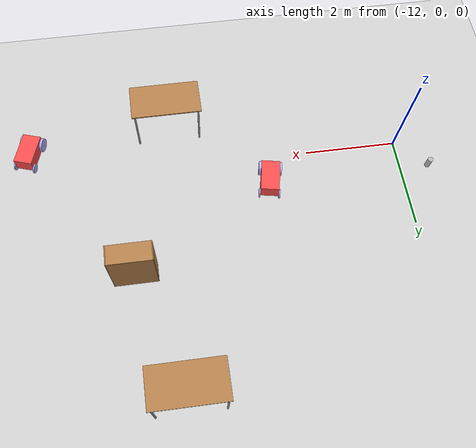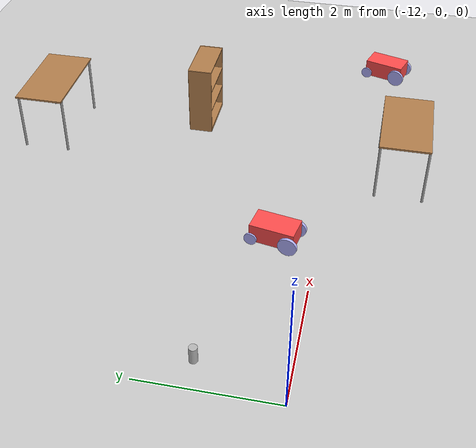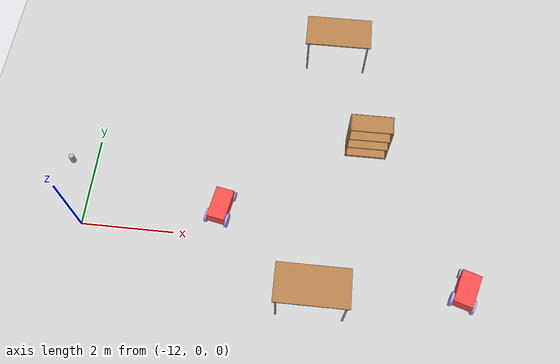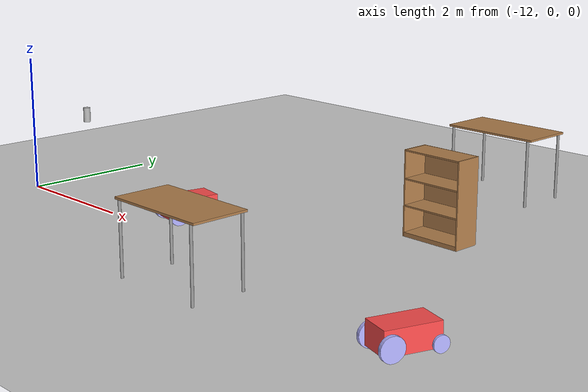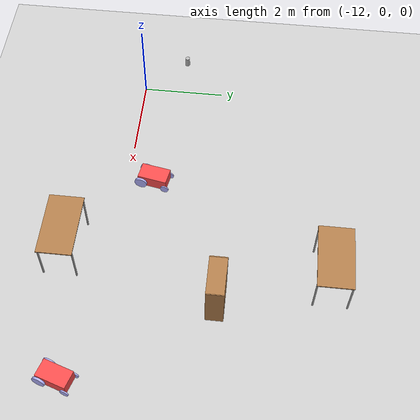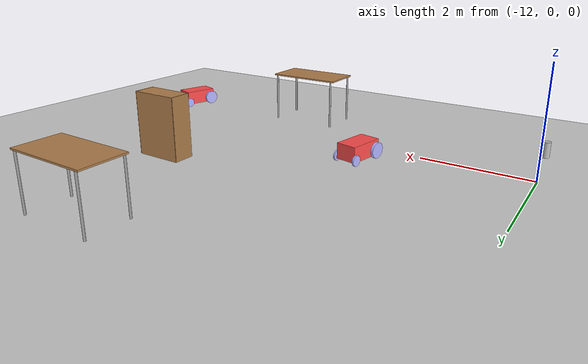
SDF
<sdf version="1.6">
 <world name="default">
  <model name="ground_plane">
   <static>1</static>
   <link name="link">
    <collision name="collision">
     <geometry><plane><normal>0 0 1</normal><size>100 100</size></plane></geometry>
     <surface>
      <contact><collide_bitmask>65535</collide_bitmask></contact>
      <friction><ode><mu>100</mu><mu2>50</mu2></ode></friction>
     </surface>
    </collision>
    <visual name="visual">
     <cast_shadows>0</cast_shadows>
     <geometry><plane><normal>0 0 1</normal><size>100 100</size></plane></geometry>
     <material>
      <script><uri>file://media/materials/scripts/gazebo.material</uri><name>Gazebo/Grey</name></script>
     </material>
    </visual>
   </link>
  </model>
  <model name="bookshelf">
   <static>1</static>
   <link name="link">
    <inertial><mass>1</mass></inertial>
    <collision name="back">
     <pose>0 0.005 0.6 0 -0 0</pose>
     <geometry><box><size>0.9 0.01 1.2</size></box></geometry>
    </collision>
    <visual name="visual1">
     <pose>0 0.005 0.6 0 -0 0</pose>
     <geometry><box><size>0.9 0.01 1.2</size></box></geometry>
     <material>
      <script><uri>file://media/materials/scripts/gazebo.material</uri><name>Gazebo/Wood</name></script>
     </material>
    </visual>
    <collision name="left_side">
     <pose>0.45 -0.195 0.6 0 -0 0</pose>
     <geometry><box><size>0.02 0.4 1.2</size></box></geometry>
    </collision>
    <visual name="visual2">
     <pose>0.45 -0.195 0.6 0 -0 0</pose>
     <geometry><box><size>0.02 0.4 1.2</size></box></geometry>
     <material>
      <script><uri>file://media/materials/scripts/gazebo.material</uri><name>Gazebo/Wood</name></script>
     </material>
    </visual>
    <collision name="right_side">
     <pose>-0.45 -0.195 0.6 0 -0 0</pose>
     <geometry><box><size>0.02 0.4 1.2</size></box></geometry>
    </collision>
    <visual name="visual3">
     <pose>-0.45 -0.195 0.6 0 -0 0</pose>
     <geometry><box><size>0.02 0.4 1.2</size></box></geometry>
     <material>
      <script><uri>file://media/materials/scripts/gazebo.material</uri><name>Gazebo/Wood</name></script>
     </material>
    </visual>
    <collision name="bottom">
     <pose>0 -0.195 0.03 0 -0 0</pose>
     <geometry><box><size>0.88 0.4 0.06</size></box></geometry>
    </collision>
    <visual name="visual4">
     <pose>0 -0.195 0.03 0 -0 0</pose>
     <geometry><box><size>0.88 0.4 0.06</size></box></geometry>
     <material>
      <script><uri>file://media/materials/scripts/gazebo.material</uri><name>Gazebo/Wood</name></script>
     </material>
    </visual>
    <collision name="top">
     <pose>0 -0.195 1.19 0 -0 0</pose>
     <geometry><box><size>0.88 0.4 0.02</size></box></geometry>
    </collision>
    <visual name="visual5">
     <pose>0 -0.195 1.19 0 -0 0</pose>
     <geometry><box><size>0.88 0.4 0.02</size></box></geometry>
     <material>
      <script><uri>file://media/materials/scripts/gazebo.material</uri><name>Gazebo/Wood</name></script>
     </material>
    </visual>
    <collision name="low_shelf">
     <pose>0 -0.195 0.43 0 -0 0</pose>
     <geometry><box><size>0.88 0.4 0.02</size></box></geometry>
    </collision>
    <visual name="visual6">
     <pose>0 -0.195 0.43 0 -0 0</pose>
     <geometry><box><size>0.88 0.4 0.02</size></box></geometry>
     <material>
      <script><uri>file://media/materials/scripts/gazebo.material</uri><name>Gazebo/Wood</name></script>
     </material>
    </visual>
    <collision name="high_shelf">
     <pose>0 -0.195 0.8 0 -0 0</pose>
     <geometry><box><size>0.88 0.4 0.02</size></box></geometry>
    </collision>
    <visual name="visual7">
     <pose>0 -0.195 0.8 0 -0 0</pose>
     <geometry><box><size>0.88 0.4 0.02</size></box></geometry>
     <material>
      <script><uri>file://media/materials/scripts/gazebo.material</uri><name>Gazebo/Wood</name></script>
     </material>
    </visual>
   </link>
   <pose>-5.96108 2.61309 0 0 -0 0</pose>
  </model>
  <model name="beer">
   <link name="link">
    <pose>0 0 0.115 0 -0 0</pose>
    <inertial>
     <mass>0.39</mass>
     <inertia><ixx>0.00058</ixx><ixy>0</ixy><ixz>0</ixz><iyy>0.00058</iyy><iyz>0</iyz><izz>0.00019</izz></inertia>
    </inertial>
    <collision name="collision">
     <geometry><cylinder><radius>0.055</radius><length>0.23</length></cylinder></geometry>
    </collision>
    <visual name="visual">
     <geometry><cylinder><radius>0.055</radius><length>0.23</length></cylinder></geometry>
     <material>
      <script>
       <uri>model://beer/materials/scripts</uri>
       <uri>model://beer/materials/textures</uri>
       <name>Beer/Diffuse</name>
      </script>
     </material>
    </visual>
   </link>
   <pose>-12.2076 1.09427 0.832171 2.9e-05 1.6e-05 0.00079</pose>
  </model>
  <model name="table">
   <static>1</static>
   <link name="link">
    <collision name="surface">
     <pose>0 0 1 0 -0 0</pose>
     <geometry><box><size>1.5 0.8 0.03</size></box></geometry>
     <surface><friction><ode><mu>0.6</mu><mu2>0.6</mu2></ode></friction></surface>
    </collision>
    <visual name="visual1">
     <pose>0 0 1 0 -0 0</pose>
     <geometry><box><size>1.5 0.8 0.03</size></box></geometry>
     <material>
      <script><uri>file://media/materials/scripts/gazebo.material</uri><name>Gazebo/Wood</name></script>
     </material>
    </visual>
    <collision name="front_left_leg">
     <pose>0.68 0.38 0.5 0 -0 0</pose>
     <geometry><cylinder><radius>0.02</radius><length>1</length></cylinder></geometry>
    </collision>
    <visual name="front_left_leg">
     <pose>0.68 0.38 0.5 0 -0 0</pose>
     <geometry><cylinder><radius>0.02</radius><length>1</length></cylinder></geometry>
     <material>
      <script><uri>file://media/materials/scripts/gazebo.material</uri><name>Gazebo/Grey</name></script>
     </material>
    </visual>
    <collision name="front_right_leg">
     <pose>0.68 -0.38 0.5 0 -0 0</pose>
     <geometry><cylinder><radius>0.02</radius><length>1</length></cylinder></geometry>
    </collision>
    <visual name="front_right_leg">
     <pose>0.68 -0.38 0.5 0 -0 0</pose>
     <geometry><cylinder><radius>0.02</radius><length>1</length></cylinder></geometry>
     <material>
      <script><uri>file://media/materials/scripts/gazebo.material</uri><name>Gazebo/Grey</name></script>
     </material>
    </visual>
    <collision name="back_right_leg">
     <pose>-0.68 -0.38 0.5 0 -0 0</pose>
     <geometry><cylinder><radius>0.02</radius><length>1</length></cylinder></geometry>
    </collision>
    <visual name="back_right_leg">
     <pose>-0.68 -0.38 0.5 0 -0 0</pose>
     <geometry><cylinder><radius>0.02</radius><length>1</length></cylinder></geometry>
     <material>
      <script><uri>file://media/materials/scripts/gazebo.material</uri><name>Gazebo/Grey</name></script>
     </material>
    </visual>
    <collision name="back_left_leg">
     <pose>-0.68 0.38 0.5 0 -0 0</pose>
     <geometry><cylinder><radius>0.02</radius><length>1</length></cylinder></geometry>
    </collision>
    <visual name="back_left_leg">
     <pose>-0.68 0.38 0.5 0 -0 0</pose>
     <geometry><cylinder><radius>0.02</radius><length>1</length></cylinder></geometry>
     <material>
      <script><uri>file://media/materials/scripts/gazebo.material</uri><name>Gazebo/Grey</name></script>
     </material>
    </visual>
   </link>
   <pose>-6.96623 -1.12797 0 0 -0 0</pose>
  </model>
  <model name="table_0">
   <static>1</static>
   <link name="link">
    <collision name="surface">
     <pose>0 0 1 0 -0 0</pose>
     <geometry><box><size>1.5 0.8 0.03</size></box></geometry>
     <surface><friction><ode><mu>0.6</mu><mu2>0.6</mu2></ode></friction></surface>
    </collision>
    <visual name="visual1">
     <pose>0 0 1 0 -0 0</pose>
     <geometry><box><size>1.5 0.8 0.03</size></box></geometry>
     <material>
      <script><uri>file://media/materials/scripts/gazebo.material</uri><name>Gazebo/Wood</name></script>
     </material>
    </visual>
    <collision name="front_left_leg">
     <pose>0.68 0.38 0.5 0 -0 0</pose>
     <geometry><cylinder><radius>0.02</radius><length>1</length></cylinder></geometry>
    </collision>
    <visual name="front_left_leg">
     <pose>0.68 0.38 0.5 0 -0 0</pose>
     <geometry><cylinder><radius>0.02</radius><length>1</length></cylinder></geometry>
     <material>
      <script><uri>file://media/materials/scripts/gazebo.material</uri><name>Gazebo/Grey</name></script>
     </material>
    </visual>
    <collision name="front_right_leg">
     <pose>0.68 -0.38 0.5 0 -0 0</pose>
     <geometry><cylinder><radius>0.02</radius><length>1</length></cylinder></geometry>
    </collision>
    <visual name="front_right_leg">
     <pose>0.68 -0.38 0.5 0 -0 0</pose>
     <geometry><cylinder><radius>0.02</radius><length>1</length></cylinder></geometry>
     <material>
      <script><uri>file://media/materials/scripts/gazebo.material</uri><name>Gazebo/Grey</name></script>
     </material>
    </visual>
    <collision name="back_right_leg">
     <pose>-0.68 -0.38 0.5 0 -0 0</pose>
     <geometry><cylinder><radius>0.02</radius><length>1</length></cylinder></geometry>
    </collision>
    <visual name="back_right_leg">
     <pose>-0.68 -0.38 0.5 0 -0 0</pose>
     <geometry><cylinder><radius>0.02</radius><length>1</length></cylinder></geometry>
     <material>
      <script><uri>file://media/materials/scripts/gazebo.material</uri><name>Gazebo/Grey</name></script>
     </material>
    </visual>
    <collision name="back_left_leg">
     <pose>-0.68 0.38 0.5 0 -0 0</pose>
     <geometry><cylinder><radius>0.02</radius><length>1</length></cylinder></geometry>
    </collision>
    <visual name="back_left_leg">
     <pose>-0.68 0.38 0.5 0 -0 0</pose>
     <geometry><cylinder><radius>0.02</radius><length>1</length></cylinder></geometry>
     <material>
      <script><uri>file://media/materials/scripts/gazebo.material</uri><name>Gazebo/Grey</name></script>
     </material>
    </visual>
   </link>
   <pose>-6.78918 4.91464 0 0 -0 0</pose>
  </model>
  <model name="Robot">
   <link name="link_0">
    <pose>0 -0.02 0.06 0 -0 0</pose>
    <inertial>
     <mass>1</mass>
     <inertia>
      <ixx>0.166667</ixx>
      <ixy>0</ixy>
      <ixz>0</ixz>
      <iyy>0.166667</iyy>
      <iyz>0</iyz>
      <izz>0.166667</izz>
     </inertia>
    </inertial>
    <visual name="visual">
     <geometry><box><size>0.4 0.7 0.3</size></box></geometry>
     <material>
      <lighting>1</lighting>
      <script><uri>file://media/materials/scripts/gazebo.material</uri><name>Gazebo/Grey</name></script>
      <shader type="pixel"><normal_map>__default__</normal_map></shader>
      <ambient>1 0.3 0.3 1</ambient>
      <diffuse>0.7 0.7 0.7 1</diffuse>
      <specular>0.01 0.01 0.01 1</specular>
      <emissive>0 0 0 1</emissive>
     </material>
    </visual>
    <collision name="collision">
     <geometry><box><size>0.4 0.7 0.3</size></box></geometry>
     <surface>
      <friction>
       <ode><mu>1</mu><mu2>1</mu2><fdir1>0 0 0</fdir1><slip1>0</slip1><slip2>0</slip2></ode>
       <torsional>
        <coefficient>1</coefficient>
        <patch_radius>0</patch_radius>
        <surface_radius>0</surface_radius>
        <use_patch_radius>1</use_patch_radius>
        <ode><slip>0</slip></ode>
       </torsional>
      </friction>
      <bounce><restitution_coefficient>0</restitution_coefficient><threshold>1e+06</threshold></bounce>
      <contact>
       <collide_without_contact>0</collide_without_contact>
       <collide_without_contact_bitmask>1</collide_without_contact_bitmask>
       <collide_bitmask>1</collide_bitmask>
       <ode>
        <soft_cfm>0</soft_cfm>
        <soft_erp>0.2</soft_erp>
        <kp>1e+13</kp>
        <kd>1</kd>
        <max_vel>0.01</max_vel>
        <min_depth>0</min_depth>
       </ode>
       <bullet>
        <split_impulse>1</split_impulse>
        <split_impulse_penetration_threshold>-0.01</split_impulse_penetration_threshold>
        <soft_cfm>0</soft_cfm>
        <soft_erp>0.2</soft_erp>
        <kp>1e+13</kp>
        <kd>1</kd>
       </bullet>
      </contact>
     </surface>
    </collision>
   </link>
   <link name="link_1">
    <pose>-0.215 0.3 -0.04 0 -0 0</pose>
    <inertial>
     <mass>1</mass>
     <inertia><ixx>0.145833</ixx><ixy>0</ixy><ixz>0</ixz><iyy>0.145833</iyy><iyz>0</iyz><izz>0.125</izz></inertia>
    </inertial>
    <visual name="visual">
     <pose>0 0 0 1.5708 -0 1.5708</pose>
     <geometry><cylinder><radius>0.1</radius><length>0.03</length></cylinder></geometry>
     <material>
      <lighting>1</lighting>
      <script><uri>file://media/materials/scripts/gazebo.material</uri><name>Gazebo/Grey</name></script>
      <shader type="pixel"><normal_map>__default__</normal_map></shader>
      <ambient>0.3 0.3 1 1</ambient>
      <diffuse>0.7 0.7 1 1</diffuse>
      <specular>0.01 0.01 0.01 1</specular>
      <emissive>0 0 0 1</emissive>
     </material>
    </visual>
    <collision name="collision">
     <pose>0 0 0 1.5708 -0 1.5708</pose>
     <geometry><cylinder><radius>0.1</radius><length>0.03</length></cylinder></geometry>
     <surface>
      <friction>
       <ode><mu>1</mu><mu2>1</mu2><fdir1>0 0 0</fdir1><slip1>0</slip1><slip2>0</slip2></ode>
       <torsional>
        <coefficient>1</coefficient>
        <patch_radius>0</patch_radius>
        <surface_radius>0</surface_radius>
        <use_patch_radius>1</use_patch_radius>
        <ode><slip>0</slip></ode>
       </torsional>
      </friction>
      <bounce><restitution_coefficient>0</restitution_coefficient><threshold>1e+06</threshold></bounce>
      <contact>
       <collide_without_contact>0</collide_without_contact>
       <collide_without_contact_bitmask>1</collide_without_contact_bitmask>
       <collide_bitmask>1</collide_bitmask>
       <ode>
        <soft_cfm>0</soft_cfm>
        <soft_erp>0.2</soft_erp>
        <kp>1e+13</kp>
        <kd>1</kd>
        <max_vel>0.01</max_vel>
        <min_depth>0</min_depth>
       </ode>
       <bullet>
        <split_impulse>1</split_impulse>
        <split_impulse_penetration_threshold>-0.01</split_impulse_penetration_threshold>
        <soft_cfm>0</soft_cfm>
        <soft_erp>0.2</soft_erp>
        <kp>1e+13</kp>
        <kd>1</kd>
       </bullet>
      </contact>
     </surface>
    </collision>
   </link>
   <link name="link_1_clone">
    <pose>0.215 0.3 -0.04 0 -0 0</pose>
    <inertial>
     <mass>1</mass>
     <inertia><ixx>0.145833</ixx><ixy>0</ixy><ixz>0</ixz><iyy>0.145833</iyy><iyz>0</iyz><izz>0.125</izz></inertia>
    </inertial>
    <visual name="visual">
     <pose>0 0 0 1.5708 -0 1.5708</pose>
     <geometry><cylinder><radius>0.1</radius><length>0.03</length></cylinder></geometry>
     <material>
      <lighting>1</lighting>
      <script><uri>file://media/materials/scripts/gazebo.material</uri><name>Gazebo/Grey</name></script>
      <shader type="pixel"><normal_map>__default__</normal_map></shader>
      <ambient>0.3 0.3 1 1</ambient>
      <diffuse>0.7 0.7 1 1</diffuse>
      <specular>0.01 0.01 0.01 1</specular>
      <emissive>0 0 0 1</emissive>
     </material>
    </visual>
    <collision name="collision">
     <pose>0 0 0 1.5708 -0 1.5708</pose>
     <geometry><cylinder><radius>0.1</radius><length>0.03</length></cylinder></geometry>
     <surface>
      <friction>
       <ode><mu>1</mu><mu2>1</mu2><fdir1>0 0 0</fdir1><slip1>0</slip1><slip2>0</slip2></ode>
       <torsional>
        <coefficient>1</coefficient>
        <patch_radius>0</patch_radius>
        <surface_radius>0</surface_radius>
        <use_patch_radius>1</use_patch_radius>
        <ode><slip>0</slip></ode>
       </torsional>
      </friction>
      <bounce><restitution_coefficient>0</restitution_coefficient><threshold>1e+06</threshold></bounce>
      <contact>
       <collide_without_contact>0</collide_without_contact>
       <collide_without_contact_bitmask>1</collide_without_contact_bitmask>
       <collide_bitmask>1</collide_bitmask>
       <ode>
        <soft_cfm>0</soft_cfm>
        <soft_erp>0.2</soft_erp>
        <kp>1e+13</kp>
        <kd>1</kd>
        <max_vel>0.01</max_vel>
        <min_depth>0</min_depth>
       </ode>
       <bullet>
        <split_impulse>1</split_impulse>
        <split_impulse_penetration_threshold>-0.01</split_impulse_penetration_threshold>
        <soft_cfm>0</soft_cfm>
        <soft_erp>0.2</soft_erp>
        <kp>1e+13</kp>
        <kd>1</kd>
       </bullet>
      </contact>
     </surface>
    </collision>
   </link>
   <link name="link_1_clone_clone">
    <pose>-0.225 -0.29 0.01 0 -0 0</pose>
    <inertial>
     <mass>1</mass>
     <inertia><ixx>0.145833</ixx><ixy>0</ixy><ixz>0</ixz><iyy>0.145833</iyy><iyz>0</iyz><izz>0.125</izz></inertia>
    </inertial>
    <visual name="visual">
     <pose>0 0 0 1.5708 -0 1.5708</pose>
     <geometry><cylinder><radius>0.15</radius><length>0.05</length></cylinder></geometry>
     <material>
      <lighting>1</lighting>
      <script><uri>file://media/materials/scripts/gazebo.material</uri><name>Gazebo/Grey</name></script>
      <shader type="pixel"><normal_map>__default__</normal_map></shader>
      <ambient>0.3 0.3 1 1</ambient>
      <diffuse>0.7 0.7 1 1</diffuse>
      <specular>0.01 0.01 0.01 1</specular>
      <emissive>0 0 0 1</emissive>
     </material>
    </visual>
    <collision name="collision">
     <pose>0 0 0 1.5708 -0 1.5708</pose>
     <geometry><cylinder><radius>0.15</radius><length>0.05</length></cylinder></geometry>
     <surface>
      <friction>
       <ode><mu>1</mu><mu2>1</mu2><fdir1>0 0 0</fdir1><slip1>0</slip1><slip2>0</slip2></ode>
       <torsional>
        <coefficient>1</coefficient>
        <patch_radius>0</patch_radius>
        <surface_radius>0</surface_radius>
        <use_patch_radius>1</use_patch_radius>
        <ode><slip>0</slip></ode>
       </torsional>
      </friction>
      <bounce><restitution_coefficient>0</restitution_coefficient><threshold>1e+06</threshold></bounce>
      <contact>
       <collide_without_contact>0</collide_without_contact>
       <collide_without_contact_bitmask>1</collide_without_contact_bitmask>
       <collide_bitmask>1</collide_bitmask>
       <ode>
        <soft_cfm>0</soft_cfm>
        <soft_erp>0.2</soft_erp>
        <kp>1e+13</kp>
        <kd>1</kd>
        <max_vel>0.01</max_vel>
        <min_depth>0</min_depth>
       </ode>
       <bullet>
        <split_impulse>1</split_impulse>
        <split_impulse_penetration_threshold>-0.01</split_impulse_penetration_threshold>
        <soft_cfm>0</soft_cfm>
        <soft_erp>0.2</soft_erp>
        <kp>1e+13</kp>
        <kd>1</kd>
       </bullet>
      </contact>
     </surface>
    </collision>
   </link>
   <link name="link_1_clone_clone_clone">
    <pose>0.225 -0.29 0.01 0 -0 0</pose>
    <inertial>
     <mass>1</mass>
     <inertia><ixx>0.145833</ixx><ixy>0</ixy><ixz>0</ixz><iyy>0.145833</iyy><iyz>0</iyz><izz>0.125</izz></inertia>
    </inertial>
    <visual name="visual">
     <pose>0 0 0 1.5708 -0 1.5708</pose>
     <geometry><cylinder><radius>0.15</radius><length>0.05</length></cylinder></geometry>
     <material>
      <lighting>1</lighting>
      <script><uri>file://media/materials/scripts/gazebo.material</uri><name>Gazebo/Grey</name></script>
      <shader type="pixel"><normal_map>__default__</normal_map></shader>
      <ambient>0.3 0.3 1 1</ambient>
      <diffuse>0.7 0.7 1 1</diffuse>
      <specular>0.01 0.01 0.01 1</specular>
      <emissive>0 0 0 1</emissive>
     </material>
    </visual>
    <collision name="collision">
     <pose>0 0 0 1.5708 -0 1.5708</pose>
     <geometry><cylinder><radius>0.15</radius><length>0.05</length></cylinder></geometry>
     <surface>
      <friction>
       <ode><mu>1</mu><mu2>1</mu2><fdir1>0 0 0</fdir1><slip1>0</slip1><slip2>0</slip2></ode>
       <torsional>
        <coefficient>1</coefficient>
        <patch_radius>0</patch_radius>
        <surface_radius>0</surface_radius>
        <use_patch_radius>1</use_patch_radius>
        <ode><slip>0</slip></ode>
       </torsional>
      </friction>
      <bounce><restitution_coefficient>0</restitution_coefficient><threshold>1e+06</threshold></bounce>
      <contact>
       <collide_without_contact>0</collide_without_contact>
       <collide_without_contact_bitmask>1</collide_without_contact_bitmask>
       <collide_bitmask>1</collide_bitmask>
       <ode>
        <soft_cfm>0</soft_cfm>
        <soft_erp>0.2</soft_erp>
        <kp>1e+13</kp>
        <kd>1</kd>
        <max_vel>0.01</max_vel>
        <min_depth>0</min_depth>
       </ode>
       <bullet>
        <split_impulse>1</split_impulse>
        <split_impulse_penetration_threshold>-0.01</split_impulse_penetration_threshold>
        <soft_cfm>0</soft_cfm>
        <soft_erp>0.2</soft_erp>
        <kp>1e+13</kp>
        <kd>1</kd>
       </bullet>
      </contact>
     </surface>
    </collision>
   </link>
   <joint name="link_0_JOINT_0" type="revolute">
    <parent>link_0</parent>
    <child>link_1</child>
    <axis>
     <xyz>-1 0 0</xyz>
     <use_parent_model_frame>0</use_parent_model_frame>
     <limit>
      <lower>-1.79769e+308</lower>
      <upper>1.79769e+308</upper>
      <effort>-1</effort>
      <velocity>-1</velocity>
     </limit>
     <dynamics>
      <spring_reference>0</spring_reference>
      <spring_stiffness>0</spring_stiffness>
      <damping>0</damping>
      <friction>0</friction>
     </dynamics>
    </axis>
    <physics>
     <ode><limit><cfm>0</cfm><erp>0.2</erp></limit><suspension><cfm>0</cfm><erp>0.2</erp></suspension></ode>
    </physics>
   </joint>
   <joint name="link_0_JOINT_1" type="revolute">
    <parent>link_0</parent>
    <child>link_1_clone</child>
    <axis>
     <xyz>-1 0 0</xyz>
     <use_parent_model_frame>0</use_parent_model_frame>
     <limit>
      <lower>-1.79769e+308</lower>
      <upper>1.79769e+308</upper>
      <effort>-1</effort>
      <velocity>-1</velocity>
     </limit>
     <dynamics>
      <spring_reference>0</spring_reference>
      <spring_stiffness>0</spring_stiffness>
      <damping>0</damping>
      <friction>0</friction>
     </dynamics>
    </axis>
    <physics>
     <ode><limit><cfm>0</cfm><erp>0.2</erp></limit><suspension><cfm>0</cfm><erp>0.2</erp></suspension></ode>
    </physics>
   </joint>
   <joint name="link_0_JOINT_3" type="revolute">
    <parent>link_0</parent>
    <child>link_1_clone_clone</child>
    <axis>
     <xyz>-1 0 0</xyz>
     <use_parent_model_frame>0</use_parent_model_frame>
     <limit>
      <lower>-1.79769e+308</lower>
      <upper>1.79769e+308</upper>
      <effort>-1</effort>
      <velocity>-1</velocity>
     </limit>
     <dynamics>
      <spring_reference>0</spring_reference>
      <spring_stiffness>0</spring_stiffness>
      <damping>0</damping>
      <friction>0</friction>
     </dynamics>
    </axis>
    <physics>
     <ode><limit><cfm>0</cfm><erp>0.2</erp></limit><suspension><cfm>0</cfm><erp>0.2</erp></suspension></ode>
    </physics>
   </joint>
   <joint name="link_0_JOINT_4" type="revolute">
    <parent>link_0</parent>
    <child>link_1_clone_clone_clone</child>
    <axis>
     <xyz>1 0 0</xyz>
     <use_parent_model_frame>0</use_parent_model_frame>
     <limit>
      <lower>-1.79769e+308</lower>
      <upper>1.79769e+308</upper>
      <effort>-1</effort>
      <velocity>-1</velocity>
     </limit>
     <dynamics>
      <spring_reference>0</spring_reference>
      <spring_stiffness>0</spring_stiffness>
      <damping>0</damping>
      <friction>0</friction>
     </dynamics>
    </axis>
    <physics>
     <ode><limit><cfm>0</cfm><erp>0.2</erp></limit><suspension><cfm>0</cfm><erp>0.2</erp></suspension></ode>
    </physics>
   </joint>
   <static>0</static>
   <pose>-9.03567 0.657132 0.14 0 0 -0.185466</pose>
  </model>
  <model name="Robot_0">
   <link name="link_0">
    <pose>0 -0.02 0.06 0 -0 0</pose>
    <inertial>
     <mass>1</mass>
     <inertia>
      <ixx>0.166667</ixx>
      <ixy>0</ixy>
      <ixz>0</ixz>
      <iyy>0.166667</iyy>
      <iyz>0</iyz>
      <izz>0.166667</izz>
     </inertia>
    </inertial>
    <visual name="visual">
     <geometry><box><size>0.4 0.7 0.3</size></box></geometry>
     <material>
      <lighting>1</lighting>
      <script><uri>file://media/materials/scripts/gazebo.material</uri><name>Gazebo/Grey</name></script>
      <shader type="pixel"><normal_map>__default__</normal_map></shader>
      <ambient>1 0.3 0.3 1</ambient>
      <diffuse>0.7 0.7 0.7 1</diffuse>
      <specular>0.01 0.01 0.01 1</specular>
      <emissive>0 0 0 1</emissive>
     </material>
    </visual>
    <collision name="collision">
     <geometry><box><size>0.4 0.7 0.3</size></box></geometry>
     <surface>
      <friction>
       <ode><mu>1</mu><mu2>1</mu2><fdir1>0 0 0</fdir1><slip1>0</slip1><slip2>0</slip2></ode>
       <torsional>
        <coefficient>1</coefficient>
        <patch_radius>0</patch_radius>
        <surface_radius>0</surface_radius>
        <use_patch_radius>1</use_patch_radius>
        <ode><slip>0</slip></ode>
       </torsional>
      </friction>
      <bounce><restitution_coefficient>0</restitution_coefficient><threshold>1e+06</threshold></bounce>
      <contact>
       <collide_without_contact>0</collide_without_contact>
       <collide_without_contact_bitmask>1</collide_without_contact_bitmask>
       <collide_bitmask>1</collide_bitmask>
       <ode>
        <soft_cfm>0</soft_cfm>
        <soft_erp>0.2</soft_erp>
        <kp>1e+13</kp>
        <kd>1</kd>
        <max_vel>0.01</max_vel>
        <min_depth>0</min_depth>
       </ode>
       <bullet>
        <split_impulse>1</split_impulse>
        <split_impulse_penetration_threshold>-0.01</split_impulse_penetration_threshold>
        <soft_cfm>0</soft_cfm>
        <soft_erp>0.2</soft_erp>
        <kp>1e+13</kp>
        <kd>1</kd>
       </bullet>
      </contact>
     </surface>
    </collision>
   </link>
   <link name="link_1">
    <pose>-0.215 0.3 -0.04 0 -0 0</pose>
    <inertial>
     <mass>1</mass>
     <inertia><ixx>0.145833</ixx><ixy>0</ixy><ixz>0</ixz><iyy>0.145833</iyy><iyz>0</iyz><izz>0.125</izz></inertia>
    </inertial>
    <visual name="visual">
     <pose>0 0 0 1.5708 -0 1.5708</pose>
     <geometry><cylinder><radius>0.1</radius><length>0.03</length></cylinder></geometry>
     <material>
      <lighting>1</lighting>
      <script><uri>file://media/materials/scripts/gazebo.material</uri><name>Gazebo/Grey</name></script>
      <shader type="pixel"><normal_map>__default__</normal_map></shader>
      <ambient>0.3 0.3 1 1</ambient>
      <diffuse>0.7 0.7 1 1</diffuse>
      <specular>0.01 0.01 0.01 1</specular>
      <emissive>0 0 0 1</emissive>
     </material>
    </visual>
    <collision name="collision">
     <pose>0 0 0 1.5708 -0 1.5708</pose>
     <geometry><cylinder><radius>0.1</radius><length>0.03</length></cylinder></geometry>
     <surface>
      <friction>
       <ode><mu>1</mu><mu2>1</mu2><fdir1>0 0 0</fdir1><slip1>0</slip1><slip2>0</slip2></ode>
       <torsional>
        <coefficient>1</coefficient>
        <patch_radius>0</patch_radius>
        <surface_radius>0</surface_radius>
        <use_patch_radius>1</use_patch_radius>
        <ode><slip>0</slip></ode>
       </torsional>
      </friction>
      <bounce><restitution_coefficient>0</restitution_coefficient><threshold>1e+06</threshold></bounce>
      <contact>
       <collide_without_contact>0</collide_without_contact>
       <collide_without_contact_bitmask>1</collide_without_contact_bitmask>
       <collide_bitmask>1</collide_bitmask>
       <ode>
        <soft_cfm>0</soft_cfm>
        <soft_erp>0.2</soft_erp>
        <kp>1e+13</kp>
        <kd>1</kd>
        <max_vel>0.01</max_vel>
        <min_depth>0</min_depth>
       </ode>
       <bullet>
        <split_impulse>1</split_impulse>
        <split_impulse_penetration_threshold>-0.01</split_impulse_penetration_threshold>
        <soft_cfm>0</soft_cfm>
        <soft_erp>0.2</soft_erp>
        <kp>1e+13</kp>
        <kd>1</kd>
       </bullet>
      </contact>
     </surface>
    </collision>
   </link>
   <link name="link_1_clone">
    <pose>0.215 0.3 -0.04 0 -0 0</pose>
    <inertial>
     <mass>1</mass>
     <inertia><ixx>0.145833</ixx><ixy>0</ixy><ixz>0</ixz><iyy>0.145833</iyy><iyz>0</iyz><izz>0.125</izz></inertia>
    </inertial>
    <visual name="visual">
     <pose>0 0 0 1.5708 -0 1.5708</pose>
     <geometry><cylinder><radius>0.1</radius><length>0.03</length></cylinder></geometry>
     <material>
      <lighting>1</lighting>
      <script><uri>file://media/materials/scripts/gazebo.material</uri><name>Gazebo/Grey</name></script>
      <shader type="pixel"><normal_map>__default__</normal_map></shader>
      <ambient>0.3 0.3 1 1</ambient>
      <diffuse>0.7 0.7 1 1</diffuse>
      <specular>0.01 0.01 0.01 1</specular>
      <emissive>0 0 0 1</emissive>
     </material>
    </visual>
    <collision name="collision">
     <pose>0 0 0 1.5708 -0 1.5708</pose>
     <geometry><cylinder><radius>0.1</radius><length>0.03</length></cylinder></geometry>
     <surface>
      <friction>
       <ode><mu>1</mu><mu2>1</mu2><fdir1>0 0 0</fdir1><slip1>0</slip1><slip2>0</slip2></ode>
       <torsional>
        <coefficient>1</coefficient>
        <patch_radius>0</patch_radius>
        <surface_radius>0</surface_radius>
        <use_patch_radius>1</use_patch_radius>
        <ode><slip>0</slip></ode>
       </torsional>
      </friction>
      <bounce><restitution_coefficient>0</restitution_coefficient><threshold>1e+06</threshold></bounce>
      <contact>
       <collide_without_contact>0</collide_without_contact>
       <collide_without_contact_bitmask>1</collide_without_contact_bitmask>
       <collide_bitmask>1</collide_bitmask>
       <ode>
        <soft_cfm>0</soft_cfm>
        <soft_erp>0.2</soft_erp>
        <kp>1e+13</kp>
        <kd>1</kd>
        <max_vel>0.01</max_vel>
        <min_depth>0</min_depth>
       </ode>
       <bullet>
        <split_impulse>1</split_impulse>
        <split_impulse_penetration_threshold>-0.01</split_impulse_penetration_threshold>
        <soft_cfm>0</soft_cfm>
        <soft_erp>0.2</soft_erp>
        <kp>1e+13</kp>
        <kd>1</kd>
       </bullet>
      </contact>
     </surface>
    </collision>
   </link>
   <link name="link_1_clone_clone">
    <pose>-0.225 -0.29 0.01 0 -0 0</pose>
    <inertial>
     <mass>1</mass>
     <inertia><ixx>0.145833</ixx><ixy>0</ixy><ixz>0</ixz><iyy>0.145833</iyy><iyz>0</iyz><izz>0.125</izz></inertia>
    </inertial>
    <visual name="visual">
     <pose>0 0 0 1.5708 -0 1.5708</pose>
     <geometry><cylinder><radius>0.15</radius><length>0.05</length></cylinder></geometry>
     <material>
      <lighting>1</lighting>
      <script><uri>file://media/materials/scripts/gazebo.material</uri><name>Gazebo/Grey</name></script>
      <shader type="pixel"><normal_map>__default__</normal_map></shader>
      <ambient>0.3 0.3 1 1</ambient>
      <diffuse>0.7 0.7 1 1</diffuse>
      <specular>0.01 0.01 0.01 1</specular>
      <emissive>0 0 0 1</emissive>
     </material>
    </visual>
    <collision name="collision">
     <pose>0 0 0 1.5708 -0 1.5708</pose>
     <geometry><cylinder><radius>0.15</radius><length>0.05</length></cylinder></geometry>
     <surface>
      <friction>
       <ode><mu>1</mu><mu2>1</mu2><fdir1>0 0 0</fdir1><slip1>0</slip1><slip2>0</slip2></ode>
       <torsional>
        <coefficient>1</coefficient>
        <patch_radius>0</patch_radius>
        <surface_radius>0</surface_radius>
        <use_patch_radius>1</use_patch_radius>
        <ode><slip>0</slip></ode>
       </torsional>
      </friction>
      <bounce><restitution_coefficient>0</restitution_coefficient><threshold>1e+06</threshold></bounce>
      <contact>
       <collide_without_contact>0</collide_without_contact>
       <collide_without_contact_bitmask>1</collide_without_contact_bitmask>
       <collide_bitmask>1</collide_bitmask>
       <ode>
        <soft_cfm>0</soft_cfm>
        <soft_erp>0.2</soft_erp>
        <kp>1e+13</kp>
        <kd>1</kd>
        <max_vel>0.01</max_vel>
        <min_depth>0</min_depth>
       </ode>
       <bullet>
        <split_impulse>1</split_impulse>
        <split_impulse_penetration_threshold>-0.01</split_impulse_penetration_threshold>
        <soft_cfm>0</soft_cfm>
        <soft_erp>0.2</soft_erp>
        <kp>1e+13</kp>
        <kd>1</kd>
       </bullet>
      </contact>
     </surface>
    </collision>
   </link>
   <link name="link_1_clone_clone_clone">
    <pose>0.225 -0.29 0.01 0 -0 0</pose>
    <inertial>
     <mass>1</mass>
     <inertia><ixx>0.145833</ixx><ixy>0</ixy><ixz>0</ixz><iyy>0.145833</iyy><iyz>0</iyz><izz>0.125</izz></inertia>
    </inertial>
    <visual name="visual">
     <pose>0 0 0 1.5708 -0 1.5708</pose>
     <geometry><cylinder><radius>0.15</radius><length>0.05</length></cylinder></geometry>
     <material>
      <lighting>1</lighting>
      <script><uri>file://media/materials/scripts/gazebo.material</uri><name>Gazebo/Grey</name></script>
      <shader type="pixel"><normal_map>__default__</normal_map></shader>
      <ambient>0.3 0.3 1 1</ambient>
      <diffuse>0.7 0.7 1 1</diffuse>
      <specular>0.01 0.01 0.01 1</specular>
      <emissive>0 0 0 1</emissive>
     </material>
    </visual>
    <collision name="collision">
     <pose>0 0 0 1.5708 -0 1.5708</pose>
     <geometry><cylinder><radius>0.15</radius><length>0.05</length></cylinder></geometry>
     <surface>
      <friction>
       <ode><mu>1</mu><mu2>1</mu2><fdir1>0 0 0</fdir1><slip1>0</slip1><slip2>0</slip2></ode>
       <torsional>
        <coefficient>1</coefficient>
        <patch_radius>0</patch_radius>
        <surface_radius>0</surface_radius>
        <use_patch_radius>1</use_patch_radius>
        <ode><slip>0</slip></ode>
       </torsional>
      </friction>
      <bounce><restitution_coefficient>0</restitution_coefficient><threshold>1e+06</threshold></bounce>
      <contact>
       <collide_without_contact>0</collide_without_contact>
       <collide_without_contact_bitmask>1</collide_without_contact_bitmask>
       <collide_bitmask>1</collide_bitmask>
       <ode>
        <soft_cfm>0</soft_cfm>
        <soft_erp>0.2</soft_erp>
        <kp>1e+13</kp>
        <kd>1</kd>
        <max_vel>0.01</max_vel>
        <min_depth>0</min_depth>
       </ode>
       <bullet>
        <split_impulse>1</split_impulse>
        <split_impulse_penetration_threshold>-0.01</split_impulse_penetration_threshold>
        <soft_cfm>0</soft_cfm>
        <soft_erp>0.2</soft_erp>
        <kp>1e+13</kp>
        <kd>1</kd>
       </bullet>
      </contact>
     </surface>
    </collision>
   </link>
   <joint name="link_0_JOINT_0" type="revolute">
    <parent>link_0</parent>
    <child>link_1</child>
    <axis>
     <xyz>-1 0 0</xyz>
     <use_parent_model_frame>0</use_parent_model_frame>
     <limit>
      <lower>-1.79769e+308</lower>
      <upper>1.79769e+308</upper>
      <effort>-1</effort>
      <velocity>-1</velocity>
     </limit>
     <dynamics>
      <spring_reference>0</spring_reference>
      <spring_stiffness>0</spring_stiffness>
      <damping>0</damping>
      <friction>0</friction>
     </dynamics>
    </axis>
    <physics>
     <ode><limit><cfm>0</cfm><erp>0.2</erp></limit><suspension><cfm>0</cfm><erp>0.2</erp></suspension></ode>
    </physics>
   </joint>
   <joint name="link_0_JOINT_1" type="revolute">
    <parent>link_0</parent>
    <child>link_1_clone</child>
    <axis>
     <xyz>-1 0 0</xyz>
     <use_parent_model_frame>0</use_parent_model_frame>
     <limit>
      <lower>-1.79769e+308</lower>
      <upper>1.79769e+308</upper>
      <effort>-1</effort>
      <velocity>-1</velocity>
     </limit>
     <dynamics>
      <spring_reference>0</spring_reference>
      <spring_stiffness>0</spring_stiffness>
      <damping>0</damping>
      <friction>0</friction>
     </dynamics>
    </axis>
    <physics>
     <ode><limit><cfm>0</cfm><erp>0.2</erp></limit><suspension><cfm>0</cfm><erp>0.2</erp></suspension></ode>
    </physics>
   </joint>
   <joint name="link_0_JOINT_3" type="revolute">
    <parent>link_0</parent>
    <child>link_1_clone_clone</child>
    <axis>
     <xyz>-1 0 0</xyz>
     <use_parent_model_frame>0</use_parent_model_frame>
     <limit>
      <lower>-1.79769e+308</lower>
      <upper>1.79769e+308</upper>
      <effort>-1</effort>
      <velocity>-1</velocity>
     </limit>
     <dynamics>
      <spring_reference>0</spring_reference>
      <spring_stiffness>0</spring_stiffness>
      <damping>0</damping>
      <friction>0</friction>
     </dynamics>
    </axis>
    <physics>
     <ode><limit><cfm>0</cfm><erp>0.2</erp></limit><suspension><cfm>0</cfm><erp>0.2</erp></suspension></ode>
    </physics>
   </joint>
   <joint name="link_0_JOINT_4" type="revolute">
    <parent>link_0</parent>
    <child>link_1_clone_clone_clone</child>
    <axis>
     <xyz>1 0 0</xyz>
     <use_parent_model_frame>0</use_parent_model_frame>
     <limit>
      <lower>-1.79769e+308</lower>
      <upper>1.79769e+308</upper>
      <effort>-1</effort>
      <velocity>-1</velocity>
     </limit>
     <dynamics>
      <spring_reference>0</spring_reference>
      <spring_stiffness>0</spring_stiffness>
      <damping>0</damping>
      <friction>0</friction>
     </dynamics>
    </axis>
    <physics>
     <ode><limit><cfm>0</cfm><erp>0.2</erp></limit><suspension><cfm>0</cfm><erp>0.2</erp></suspension></ode>
    </physics>
   </joint>
   <static>0</static>
   <pose>-3.81595 -0.679022 0.14 0 0 -0.310188</pose>
  </model>
 </world>
</sdf>
